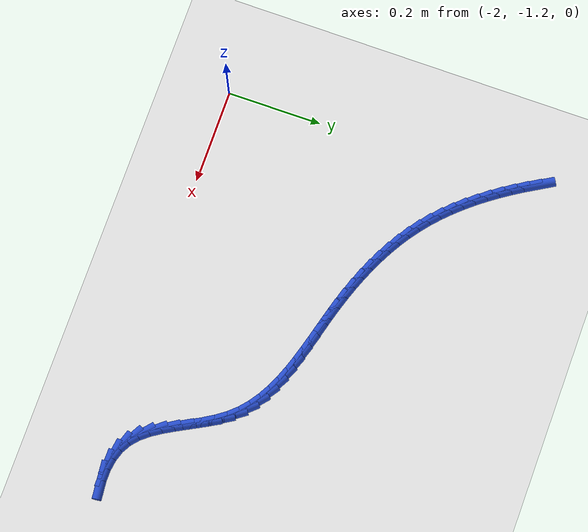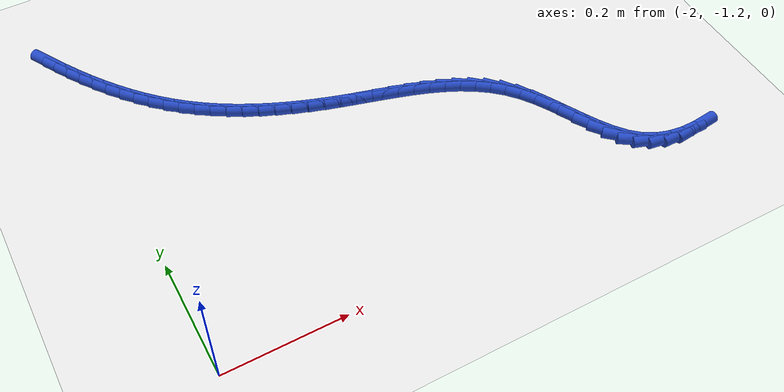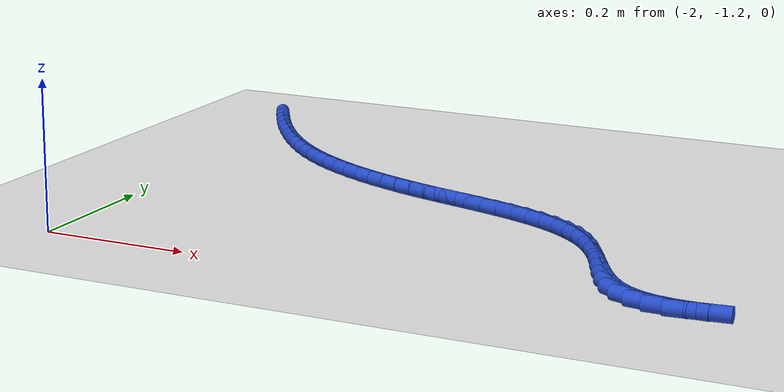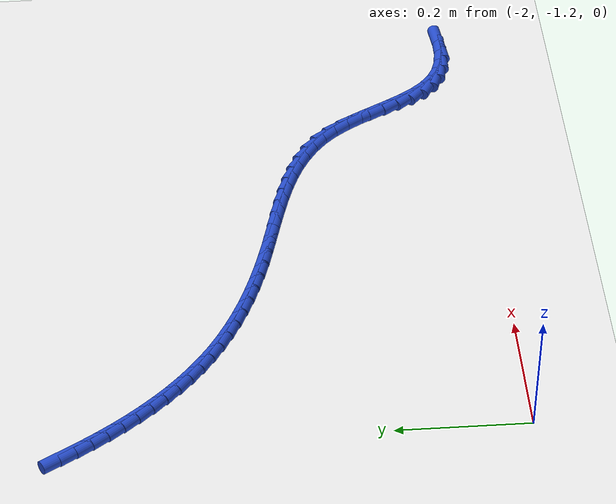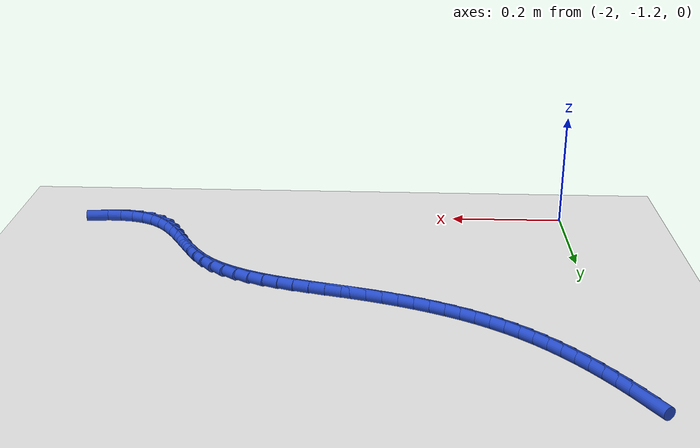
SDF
<sdf version="1.6">
 <world name="default">
  <model name="ground_plane">
   <static>1</static>
   <link name="link">
    <collision name="collision">
     <geometry><plane><normal>0 0 1</normal><size>100 100</size></plane></geometry>
     <surface><friction><ode><mu>100</mu><mu2>50</mu2></ode></friction></surface>
    </collision>
    <visual name="visual">
     <cast_shadows>0</cast_shadows>
     <geometry><plane><normal>0 0 1</normal><size>100 100</size></plane></geometry>
     <material>
      <script><uri>file://media/materials/scripts/gazebo.material</uri><name>Gazebo/WhiteGlow</name></script>
     </material>
    </visual>
   </link>
  </model>
  <model name="line">
   <link name="link_151">
    <pose>-2.021923990799254 -0.5355450887505386 0.01 0 1.57 -1.0382219763380522</pose>
    <collision name="collision">
     <geometry><cylinder><radius>0.01</radius><length>0.08</length></cylinder></geometry>
    </collision>
    <visual name="visual">
     <material>
      <script><name>Gazebo/Blue</name><uri>file://media/materials/scripts/gazebo.material</uri></script>
     </material>
     <geometry><cylinder><radius>0.01</radius><length>0.08</length></cylinder></geometry>
    </visual>
   </link>
   <link name="link_152">
    <pose>-2.00855625623913 -0.5582260861712801 0.01 0 1.57 -1.0093789234166184</pose>
    <collision name="collision">
     <geometry><cylinder><radius>0.01</radius><length>0.08</length></cylinder></geometry>
    </collision>
    <visual name="visual">
     <material>
      <script><name>Gazebo/Blue</name><uri>file://media/materials/scripts/gazebo.material</uri></script>
     </material>
     <geometry><cylinder><radius>0.01</radius><length>0.08</length></cylinder></geometry>
    </visual>
   </link>
   <link name="link_153">
    <pose>-1.9944854794802829 -0.5805987986882819 0.01 0 1.57 -0.9783700306569163</pose>
    <collision name="collision">
     <geometry><cylinder><radius>0.01</radius><length>0.08</length></cylinder></geometry>
    </collision>
    <visual name="visual">
     <material>
      <script><name>Gazebo/Blue</name><uri>file://media/materials/scripts/gazebo.material</uri></script>
     </material>
     <geometry><cylinder><radius>0.01</radius><length>0.08</length></cylinder></geometry>
    </visual>
   </link>
   <link name="link_154">
    <pose>-1.9797003725868245 -0.6025652933536839 0.01 0 1.57 -0.9449314365380909</pose>
    <collision name="collision">
     <geometry><cylinder><radius>0.01</radius><length>0.08</length></cylinder></geometry>
    </collision>
    <visual name="visual">
     <material>
      <script><name>Gazebo/Blue</name><uri>file://media/materials/scripts/gazebo.material</uri></script>
     </material>
     <geometry><cylinder><radius>0.01</radius><length>0.08</length></cylinder></geometry>
    </visual>
   </link>
   <link name="link_155">
    <pose>-1.9641892219343249 -0.6240250925691657 0.01 0 1.57 -0.9088514503811013</pose>
    <collision name="collision">
     <geometry><cylinder><radius>0.01</radius><length>0.08</length></cylinder></geometry>
    </collision>
    <visual name="visual">
     <material>
      <script><name>Gazebo/Blue</name><uri>file://media/materials/scripts/gazebo.material</uri></script>
     </material>
     <geometry><cylinder><radius>0.01</radius><length>0.08</length></cylinder></geometry>
    </visual>
   </link>
   <link name="link_156">
    <pose>-1.9479403138983513 -0.6448777187364073 0.01 0 1.57 -0.8699113004934491</pose>
    <collision name="collision">
     <geometry><cylinder><radius>0.01</radius><length>0.08</length></cylinder></geometry>
    </collision>
    <visual name="visual">
     <material>
      <script><name>Gazebo/Blue</name><uri>file://media/materials/scripts/gazebo.material</uri></script>
     </material>
     <geometry><cylinder><radius>0.01</radius><length>0.08</length></cylinder></geometry>
    </visual>
   </link>
   <link name="link_157">
    <pose>-1.9309419348544743 -0.6650226942570867 0.01 0 1.57 -0.8278910651595774</pose>
    <collision name="collision">
     <geometry><cylinder><radius>0.01</radius><length>0.08</length></cylinder></geometry>
    </collision>
    <visual name="visual">
     <material>
      <script><name>Gazebo/Blue</name><uri>file://media/materials/scripts/gazebo.material</uri></script>
     </material>
     <geometry><cylinder><radius>0.01</radius><length>0.08</length></cylinder></geometry>
    </visual>
   </link>
   <link name="link_158">
    <pose>-1.9131823711782616 -0.684359541532884 0.01 0 1.57 -0.7825784057988687</pose>
    <collision name="collision">
     <geometry><cylinder><radius>0.01</radius><length>0.08</length></cylinder></geometry>
    </collision>
    <visual name="visual">
     <material>
      <script><name>Gazebo/Blue</name><uri>file://media/materials/scripts/gazebo.material</uri></script>
     </material>
     <geometry><cylinder><radius>0.01</radius><length>0.08</length></cylinder></geometry>
    </visual>
   </link>
   <link name="link_159">
    <pose>-1.8946499092452826 -0.7027877829654787 0.01 0 1.57 -0.733780731399108</pose>
    <collision name="collision">
     <geometry><cylinder><radius>0.01</radius><length>0.08</length></cylinder></geometry>
    </collision>
    <visual name="visual">
     <material>
      <script><name>Gazebo/Blue</name><uri>file://media/materials/scripts/gazebo.material</uri></script>
     </material>
     <geometry><cylinder><radius>0.01</radius><length>0.08</length></cylinder></geometry>
    </visual>
   </link>
   <link name="link_160">
    <pose>-1.8753328354311052 -0.7202069409565496 0.01 0 1.57 -0.6813680061166463</pose>
    <collision name="collision">
     <geometry><cylinder><radius>0.01</radius><length>0.08</length></cylinder></geometry>
    </collision>
    <visual name="visual">
     <material>
      <script><name>Gazebo/Blue</name><uri>file://media/materials/scripts/gazebo.material</uri></script>
     </material>
     <geometry><cylinder><radius>0.01</radius><length>0.08</length></cylinder></geometry>
    </visual>
   </link>
   <link name="link_161">
    <pose>-1.8552196603056814 -0.7365172471236423 0.01 0 1.57 -0.6274474091151726</pose>
    <collision name="collision">
     <geometry><cylinder><radius>0.01</radius><length>0.08</length></cylinder></geometry>
    </collision>
    <visual name="visual">
     <material>
      <script><name>Gazebo/Blue</name><uri>file://media/materials/scripts/gazebo.material</uri></script>
     </material>
     <geometry><cylinder><radius>0.01</radius><length>0.08</length></cylinder></geometry>
    </visual>
   </link>
   <link name="link_162">
    <pose>-1.8343169762645066 -0.7516761330789691 0.01 0 1.57 -0.5759775627675704</pose>
    <collision name="collision">
     <geometry><cylinder><radius>0.01</radius><length>0.08</length></cylinder></geometry>
    </collision>
    <visual name="visual">
     <material>
      <script><name>Gazebo/Blue</name><uri>file://media/materials/scripts/gazebo.material</uri></script>
     </material>
     <geometry><cylinder><radius>0.01</radius><length>0.08</length></cylinder></geometry>
    </visual>
   </link>
   <link name="link_163">
    <pose>-1.8126624495440877 -0.7657393293336187 0.01 0 1.57 -0.5276175097250331</pose>
    <collision name="collision">
     <geometry><cylinder><radius>0.01</radius><length>0.08</length></cylinder></geometry>
    </collision>
    <visual name="visual">
     <material>
      <script><name>Gazebo/Blue</name><uri>file://media/materials/scripts/gazebo.material</uri></script>
     </material>
     <geometry><cylinder><radius>0.01</radius><length>0.08</length></cylinder></geometry>
    </visual>
   </link>
   <link name="link_164">
    <pose>-1.7902968102497596 -0.7787722586324737 0.01 0 1.57 -0.4825677105316071</pose>
    <collision name="collision">
     <geometry><cylinder><radius>0.01</radius><length>0.08</length></cylinder></geometry>
    </collision>
    <visual name="visual">
     <material>
      <script><name>Gazebo/Blue</name><uri>file://media/materials/scripts/gazebo.material</uri></script>
     </material>
     <geometry><cylinder><radius>0.01</radius><length>0.08</length></cylinder></geometry>
    </visual>
   </link>
   <link name="link_165">
    <pose>-1.7672607884868576 -0.7908403437204163 0.01 0 1.57 -0.44094473061205847</pose>
    <collision name="collision">
     <geometry><cylinder><radius>0.01</radius><length>0.08</length></cylinder></geometry>
    </collision>
    <visual name="visual">
     <material>
      <script><name>Gazebo/Blue</name><uri>file://media/materials/scripts/gazebo.material</uri></script>
     </material>
     <geometry><cylinder><radius>0.01</radius><length>0.08</length></cylinder></geometry>
    </visual>
   </link>
   <link name="link_166">
    <pose>-1.7435951143607178 -0.8020090073423279 0.01 0 1.57 -0.40279435980138956</pose>
    <collision name="collision">
     <geometry><cylinder><radius>0.01</radius><length>0.08</length></cylinder></geometry>
    </collision>
    <visual name="visual">
     <material>
      <script><name>Gazebo/Blue</name><uri>file://media/materials/scripts/gazebo.material</uri></script>
     </material>
     <geometry><cylinder><radius>0.01</radius><length>0.08</length></cylinder></geometry>
    </visual>
   </link>
   <link name="link_167">
    <pose>-1.7193405179766743 -0.8123436722430907 0.01 0 1.57 -0.3681061705351656</pose>
    <collision name="collision">
     <geometry><cylinder><radius>0.01</radius><length>0.08</length></cylinder></geometry>
    </collision>
    <visual name="visual">
     <material>
      <script><name>Gazebo/Blue</name><uri>file://media/materials/scripts/gazebo.material</uri></script>
     </material>
     <geometry><cylinder><radius>0.01</radius><length>0.08</length></cylinder></geometry>
    </visual>
   </link>
   <link name="link_168">
    <pose>-1.6945377294400623 -0.8219097611675872 0.01 0 1.57 -0.3368278514216853</pose>
    <collision name="collision">
     <geometry><cylinder><radius>0.01</radius><length>0.08</length></cylinder></geometry>
    </collision>
    <visual name="visual">
     <material>
      <script><name>Gazebo/Blue</name><uri>file://media/materials/scripts/gazebo.material</uri></script>
     </material>
     <geometry><cylinder><radius>0.01</radius><length>0.08</length></cylinder></geometry>
    </visual>
   </link>
   <link name="link_169">
    <pose>-1.6692274788562171 -0.8307726968606988 0.01 0 1.57 -0.3088782355920271</pose>
    <collision name="collision">
     <geometry><cylinder><radius>0.01</radius><length>0.08</length></cylinder></geometry>
    </collision>
    <visual name="visual">
     <material>
      <script><name>Gazebo/Blue</name><uri>file://media/materials/scripts/gazebo.material</uri></script>
     </material>
     <geometry><cylinder><radius>0.01</radius><length>0.08</length></cylinder></geometry>
    </visual>
   </link>
   <link name="link_170">
    <pose>-1.6434504963304732 -0.8389979020673081 0.01 0 1.57 -0.2844293409203508</pose>
    <collision name="collision">
     <geometry><cylinder><radius>0.01</radius><length>0.08</length></cylinder></geometry>
    </collision>
    <visual name="visual">
     <material>
      <script><name>Gazebo/Blue</name><uri>file://media/materials/scripts/gazebo.material</uri></script>
     </material>
     <geometry><cylinder><radius>0.01</radius><length>0.08</length></cylinder></geometry>
    </visual>
   </link>
   <link name="link_171">
    <pose>-1.6172524678681495 -0.8466570545795511 0.01 0 1.57 -0.2681942826194898</pose>
    <collision name="collision">
     <geometry><cylinder><radius>0.01</radius><length>0.08</length></cylinder></geometry>
    </collision>
    <visual name="visual">
     <material>
      <script><name>Gazebo/Blue</name><uri>file://media/materials/scripts/gazebo.material</uri></script>
     </material>
     <geometry><cylinder><radius>0.01</radius><length>0.08</length></cylinder></geometry>
    </visual>
   </link>
   <link name="link_172">
    <pose>-1.5907688609310964 -0.853935149095696 0.01 0 1.57 -0.26408309797601837</pose>
    <collision name="collision">
     <geometry><cylinder><radius>0.01</radius><length>0.08</length></cylinder></geometry>
    </collision>
    <visual name="visual">
     <material>
      <script><name>Gazebo/Blue</name><uri>file://media/materials/scripts/gazebo.material</uri></script>
     </material>
     <geometry><cylinder><radius>0.01</radius><length>0.08</length></cylinder></geometry>
    </visual>
   </link>
   <link name="link_173">
    <pose>-1.5642132373025555 -0.8611157464013487 0.01 0 1.57 -0.27212143405591105</pose>
    <collision name="collision">
     <geometry><cylinder><radius>0.01</radius><length>0.08</length></cylinder></geometry>
    </collision>
    <visual name="visual">
     <material>
      <script><name>Gazebo/Blue</name><uri>file://media/materials/scripts/gazebo.material</uri></script>
     </material>
     <geometry><cylinder><radius>0.01</radius><length>0.08</length></cylinder></geometry>
    </visual>
   </link>
   <link name="link_174">
    <pose>-1.5378017629782652 -0.8684856941668992 0.01 0 1.57 -0.2925410463155228</pose>
    <collision name="collision">
     <geometry><cylinder><radius>0.01</radius><length>0.08</length></cylinder></geometry>
    </collision>
    <visual name="visual">
     <material>
      <script><name>Gazebo/Blue</name><uri>file://media/materials/scripts/gazebo.material</uri></script>
     </material>
     <geometry><cylinder><radius>0.01</radius><length>0.08</length></cylinder></geometry>
    </visual>
   </link>
   <link name="link_175">
    <pose>-1.5117506039539623 -0.8763318400627359 0.01 0 1.57 -0.32590064202929014</pose>
    <collision name="collision">
     <geometry><cylinder><radius>0.01</radius><length>0.08</length></cylinder></geometry>
    </collision>
    <visual name="visual">
     <material>
      <script><name>Gazebo/Blue</name><uri>file://media/materials/scripts/gazebo.material</uri></script>
     </material>
     <geometry><cylinder><radius>0.01</radius><length>0.08</length></cylinder></geometry>
    </visual>
   </link>
   <link name="link_176">
    <pose>-1.4862759262253862 -0.8849410317592482 0.01 0 1.57 -0.37301932023689205</pose>
    <collision name="collision">
     <geometry><cylinder><radius>0.01</radius><length>0.08</length></cylinder></geometry>
    </collision>
    <visual name="visual">
     <material>
      <script><name>Gazebo/Blue</name><uri>file://media/materials/scripts/gazebo.material</uri></script>
     </material>
     <geometry><cylinder><radius>0.01</radius><length>0.08</length></cylinder></geometry>
    </visual>
   </link>
   <link name="link_177">
    <pose>-1.4615938957882746 -0.8946001169268254 0.01 0 1.57 -0.4348331766579348</pose>
    <collision name="collision">
     <geometry><cylinder><radius>0.01</radius><length>0.08</length></cylinder></geometry>
    </collision>
    <visual name="visual">
     <material>
      <script><name>Gazebo/Blue</name><uri>file://media/materials/scripts/gazebo.material</uri></script>
     </material>
     <geometry><cylinder><radius>0.01</radius><length>0.08</length></cylinder></geometry>
    </visual>
   </link>
   <link name="link_178">
    <pose>-1.4379206786383656 -0.9055959432358562 0.01 0 1.57 -0.5121282233582579</pose>
    <collision name="collision">
     <geometry><cylinder><radius>0.01</radius><length>0.08</length></cylinder></geometry>
    </collision>
    <visual name="visual">
     <material>
      <script><name>Gazebo/Blue</name><uri>file://media/materials/scripts/gazebo.material</uri></script>
     </material>
     <geometry><cylinder><radius>0.01</radius><length>0.08</length></cylinder></geometry>
    </visual>
   </link>
   <link name="link_179">
    <pose>-1.4154724407713979 -0.9182153583567302 0.01 0 1.57 -0.6051094581740749</pose>
    <collision name="collision">
     <geometry><cylinder><radius>0.01</radius><length>0.08</length></cylinder></geometry>
    </collision>
    <visual name="visual">
     <material>
      <script><name>Gazebo/Blue</name><uri>file://media/materials/scripts/gazebo.material</uri></script>
     </material>
     <geometry><cylinder><radius>0.01</radius><length>0.08</length></cylinder></geometry>
    </visual>
   </link>
   <link name="link_180">
    <pose>-1.3944653481831102 -0.9327452099598363 0.01 0 1.57 -0.7128298732130712</pose>
    <collision name="collision">
     <geometry><cylinder><radius>0.01</radius><length>0.08</length></cylinder></geometry>
    </collision>
    <visual name="visual">
     <material>
      <script><name>Gazebo/Blue</name><uri>file://media/materials/scripts/gazebo.material</uri></script>
     </material>
     <geometry><cylinder><radius>0.01</radius><length>0.08</length></cylinder></geometry>
    </visual>
   </link>
   <link name="link_181">
    <pose>-1.3751155668692394 -0.9494723457155645 0.01 0 1.57 -0.8326402782138349</pose>
    <collision name="collision">
     <geometry><cylinder><radius>0.01</radius><length>0.08</length></cylinder></geometry>
    </collision>
    <visual name="visual">
     <material>
      <script><name>Gazebo/Blue</name><uri>file://media/materials/scripts/gazebo.material</uri></script>
     </material>
     <geometry><cylinder><radius>0.01</radius><length>0.08</length></cylinder></geometry>
    </visual>
   </link>
   <link name="link_182">
    <pose>-1.3576390705844104 -0.9686833265497421 0.01 0 1.57 -0.9487455218220395</pose>
    <collision name="collision">
     <geometry><cylinder><radius>0.01</radius><length>0.08</length></cylinder></geometry>
    </collision>
    <visual name="visual">
     <material>
      <script><name>Gazebo/Blue</name><uri>file://media/materials/scripts/gazebo.material</uri></script>
     </material>
     <geometry><cylinder><radius>0.01</radius><length>0.08</length></cylinder></geometry>
    </visual>
   </link>
   <link name="link_183">
    <pose>-1.3420712916259032 -0.9903954198977437 0.01 0 1.57 -1.0284207502172422</pose>
    <collision name="collision">
     <geometry><cylinder><radius>0.01</radius><length>0.08</length></cylinder></geometry>
    </collision>
    <visual name="visual">
     <material>
      <script><name>Gazebo/Blue</name><uri>file://media/materials/scripts/gazebo.material</uri></script>
     </material>
     <geometry><cylinder><radius>0.01</radius><length>0.08</length></cylinder></geometry>
    </visual>
   </link>
   <link name="link_184">
    <pose>-1.3279320075734429 -1.0138567487513117 0.01 0 1.57 -1.070949368469883</pose>
    <collision name="collision">
     <geometry><cylinder><radius>0.01</radius><length>0.08</length></cylinder></geometry>
    </collision>
    <visual name="visual">
     <material>
      <script><name>Gazebo/Blue</name><uri>file://media/materials/scripts/gazebo.material</uri></script>
     </material>
     <geometry><cylinder><radius>0.01</radius><length>0.08</length></cylinder></geometry>
    </visual>
   </link>
   <link name="link_185">
    <pose>-1.3146495302411512 -1.0381790068540881 0.01 0 1.57 -1.079555204222774</pose>
    <collision name="collision">
     <geometry><cylinder><radius>0.01</radius><length>0.08</length></cylinder></geometry>
    </collision>
    <visual name="visual">
     <material>
      <script><name>Gazebo/Blue</name><uri>file://media/materials/scripts/gazebo.material</uri></script>
     </material>
     <geometry><cylinder><radius>0.01</radius><length>0.08</length></cylinder></geometry>
    </visual>
   </link>
   <link name="link_186">
    <pose>-1.3016521714431522 -1.0624738879497182 0.01 0 1.57 -1.0540917038023498</pose>
    <collision name="collision">
     <geometry><cylinder><radius>0.01</radius><length>0.08</length></cylinder></geometry>
    </collision>
    <visual name="visual">
     <material>
      <script><name>Gazebo/Blue</name><uri>file://media/materials/scripts/gazebo.material</uri></script>
     </material>
     <geometry><cylinder><radius>0.01</radius><length>0.08</length></cylinder></geometry>
    </visual>
   </link>
   <link name="link_187">
    <pose>-1.2883682429935686 -1.0858530857818445 0.01 0 1.57 -0.9905761463089683</pose>
    <collision name="collision">
     <geometry><cylinder><radius>0.01</radius><length>0.08</length></cylinder></geometry>
    </collision>
    <visual name="visual">
     <material>
      <script><name>Gazebo/Blue</name><uri>file://media/materials/scripts/gazebo.material</uri></script>
     </material>
     <geometry><cylinder><radius>0.01</radius><length>0.08</length></cylinder></geometry>
    </visual>
   </link>
   <link name="link_188">
    <pose>-1.2742260567065236 -1.107428294094112 0.01 0 1.57 -0.881193904098888</pose>
    <collision name="collision">
     <geometry><cylinder><radius>0.01</radius><length>0.08</length></cylinder></geometry>
    </collision>
    <visual name="visual">
     <material>
      <script><name>Gazebo/Blue</name><uri>file://media/materials/scripts/gazebo.material</uri></script>
     </material>
     <geometry><cylinder><radius>0.01</radius><length>0.08</length></cylinder></geometry>
    </visual>
   </link>
   <link name="link_189">
    <pose>-1.2586539243961408 -1.126311206630163 0.01 0 1.57 -0.7164461417389835</pose>
    <collision name="collision">
     <geometry><cylinder><radius>0.01</radius><length>0.08</length></cylinder></geometry>
    </collision>
    <visual name="visual">
     <material>
      <script><name>Gazebo/Blue</name><uri>file://media/materials/scripts/gazebo.material</uri></script>
     </material>
     <geometry><cylinder><radius>0.01</radius><length>0.08</length></cylinder></geometry>
    </visual>
   </link>
   <link name="link_190">
    <pose>-1.2410805696130671 -1.141614079655032 0.01 0 1.57 -0.5095039307553624</pose>
    <collision name="collision">
     <geometry><cylinder><radius>0.01</radius><length>0.08</length></cylinder></geometry>
    </collision>
    <visual name="visual">
     <material>
      <script><name>Gazebo/Blue</name><uri>file://media/materials/scripts/gazebo.material</uri></script>
     </material>
     <geometry><cylinder><radius>0.01</radius><length>0.08</length></cylinder></geometry>
    </visual>
   </link>
   <link name="link_191">
    <pose>-1.2211531931070214 -1.1527476566717025 0.01 0 1.57 -0.31402629107916274</pose>
    <collision name="collision">
     <geometry><cylinder><radius>0.01</radius><length>0.08</length></cylinder></geometry>
    </collision>
    <visual name="visual">
     <material>
      <script><name>Gazebo/Blue</name><uri>file://media/materials/scripts/gazebo.material</uri></script>
     </material>
     <geometry><cylinder><radius>0.01</radius><length>0.08</length></cylinder></geometry>
    </visual>
   </link>
   <link name="link_192">
    <pose>-1.1990961397460356 -1.1599111852215958 0.01 0 1.57 -0.14647966076756344</pose>
    <collision name="collision">
     <geometry><cylinder><radius>0.01</radius><length>0.08</length></cylinder></geometry>
    </collision>
    <visual name="visual">
     <material>
      <script><name>Gazebo/Blue</name><uri>file://media/materials/scripts/gazebo.material</uri></script>
     </material>
     <geometry><cylinder><radius>0.01</radius><length>0.08</length></cylinder></geometry>
    </visual>
   </link>
   <link name="link_193">
    <pose>-1.175227954473133 -1.1634326105789758 0.01 0 1.57 -0.008172575448449359</pose>
    <collision name="collision">
     <geometry><cylinder><radius>0.01</radius><length>0.08</length></cylinder></geometry>
    </collision>
    <visual name="visual">
     <material>
      <script><name>Gazebo/Blue</name><uri>file://media/materials/scripts/gazebo.material</uri></script>
     </material>
     <geometry><cylinder><radius>0.01</radius><length>0.08</length></cylinder></geometry>
    </visual>
   </link>
   <link name="link_194">
    <pose>-1.149867182231336 -1.1636398780181059 0.01 0 1.57 0.10434788364957712</pose>
    <collision name="collision">
     <geometry><cylinder><radius>0.01</radius><length>0.08</length></cylinder></geometry>
    </collision>
    <visual name="visual">
     <material>
      <script><name>Gazebo/Blue</name><uri>file://media/materials/scripts/gazebo.material</uri></script>
     </material>
     <geometry><cylinder><radius>0.01</radius><length>0.08</length></cylinder></geometry>
    </visual>
   </link>
  </model>
 </world>
</sdf>
